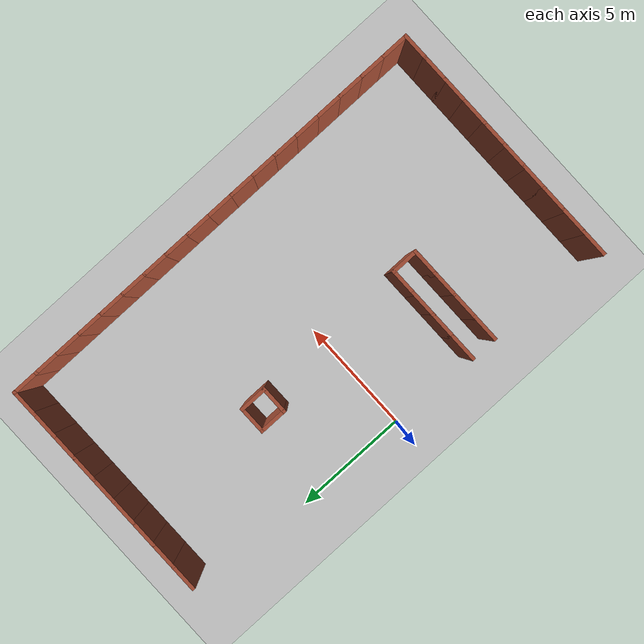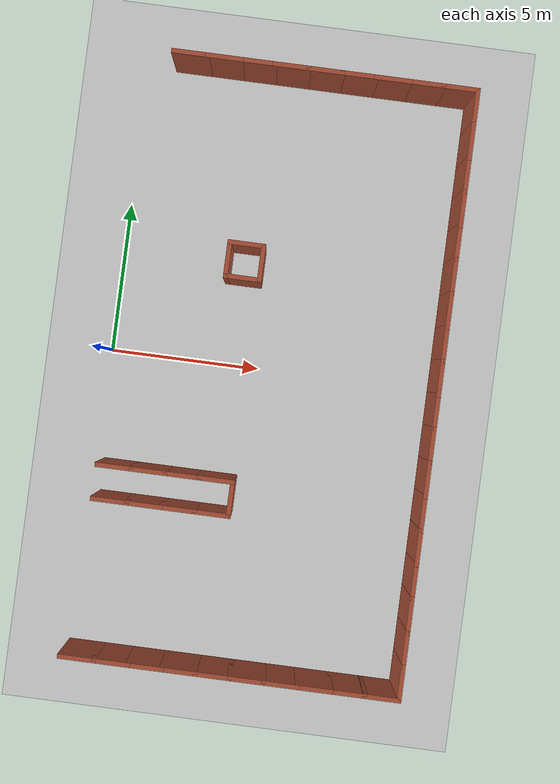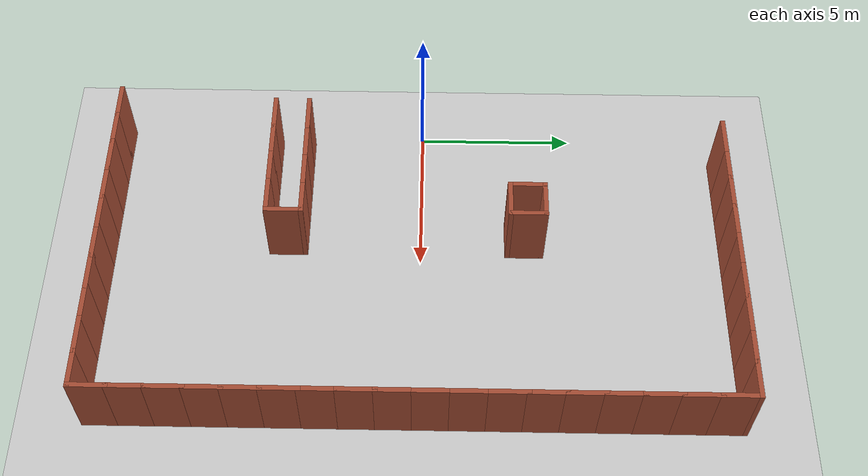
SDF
<sdf version="1.7">
 <world name="default">
  <model name="ground_plane">
   <static>1</static>
   <link name="link">
    <collision name="collision">
     <geometry><plane><normal>0 0 1</normal><size>100 100</size></plane></geometry>
     <surface>
      <contact><collide_bitmask>65535</collide_bitmask></contact>
      <friction><ode><mu>100</mu><mu2>50</mu2></ode></friction>
     </surface>
    </collision>
    <visual name="visual">
     <cast_shadows>0</cast_shadows>
     <geometry><plane><normal>0 0 1</normal><size>100 100</size></plane></geometry>
     <material>
      <script><uri>file://media/materials/scripts/gazebo.material</uri><name>Gazebo/Grey</name></script>
     </material>
    </visual>
   </link>
  </model>
  <model name="mapateste">
   <pose>0.45 -0.1 0 0 -0 0</pose>
   <link name="Wall_100">
    <collision name="Wall_100_Collision">
     <geometry><box><size>1.25 0.15 2.5</size></box></geometry>
     <pose>0 0 1.25 0 -0 0</pose>
    </collision>
    <visual name="Wall_100_Visual">
     <pose>0 0 1.25 0 -0 0</pose>
     <geometry><box><size>1.25 0.15 2.5</size></box></geometry>
     <material>
      <script><uri>file://media/materials/scripts/gazebo.material</uri><name>Gazebo/Bricks</name></script>
      <ambient>1 1 1 1</ambient>
     </material>
     <meta><layer>0</layer></meta>
    </visual>
    <pose>9.9 9.9 0 0 -0 3.14159</pose>
   </link>
   <link name="Wall_101">
    <collision name="Wall_101_Collision">
     <geometry><box><size>1.25 0.15 2.5</size></box></geometry>
     <pose>0 0 1.25 0 -0 0</pose>
    </collision>
    <visual name="Wall_101_Visual">
     <pose>0 0 1.25 0 -0 0</pose>
     <geometry><box><size>1.25 0.15 2.5</size></box></geometry>
     <material>
      <script><uri>file://media/materials/scripts/gazebo.material</uri><name>Gazebo/Bricks</name></script>
      <ambient>1 1 1 1</ambient>
     </material>
     <meta><layer>0</layer></meta>
    </visual>
    <pose>8.8 9.9 0 0 -0 3.14159</pose>
   </link>
   <link name="Wall_102">
    <collision name="Wall_102_Collision">
     <geometry><box><size>1.25 0.15 2.5</size></box></geometry>
     <pose>0 0 1.25 0 -0 0</pose>
    </collision>
    <visual name="Wall_102_Visual">
     <pose>0 0 1.25 0 -0 0</pose>
     <geometry><box><size>1.25 0.15 2.5</size></box></geometry>
     <material>
      <script><uri>file://media/materials/scripts/gazebo.material</uri><name>Gazebo/Bricks</name></script>
      <ambient>1 1 1 1</ambient>
     </material>
     <meta><layer>0</layer></meta>
    </visual>
    <pose>7.7 9.9 0 0 -0 3.14159</pose>
   </link>
   <link name="Wall_103">
    <collision name="Wall_103_Collision">
     <geometry><box><size>1.25 0.15 2.5</size></box></geometry>
     <pose>0 0 1.25 0 -0 0</pose>
    </collision>
    <visual name="Wall_103_Visual">
     <pose>0 0 1.25 0 -0 0</pose>
     <geometry><box><size>1.25 0.15 2.5</size></box></geometry>
     <material>
      <script><uri>file://media/materials/scripts/gazebo.material</uri><name>Gazebo/Bricks</name></script>
      <ambient>1 1 1 1</ambient>
     </material>
     <meta><layer>0</layer></meta>
    </visual>
    <pose>6.6 9.9 0 0 -0 3.14159</pose>
   </link>
   <link name="Wall_104">
    <collision name="Wall_104_Collision">
     <geometry><box><size>1.25 0.15 2.5</size></box></geometry>
     <pose>0 0 1.25 0 -0 0</pose>
    </collision>
    <visual name="Wall_104_Visual">
     <pose>0 0 1.25 0 -0 0</pose>
     <geometry><box><size>1.25 0.15 2.5</size></box></geometry>
     <material>
      <script><uri>file://media/materials/scripts/gazebo.material</uri><name>Gazebo/Bricks</name></script>
      <ambient>1 1 1 1</ambient>
     </material>
     <meta><layer>0</layer></meta>
    </visual>
    <pose>5.5 9.9 0 0 -0 3.14159</pose>
   </link>
   <link name="Wall_105">
    <collision name="Wall_105_Collision">
     <geometry><box><size>1.25 0.15 2.5</size></box></geometry>
     <pose>0 0 1.25 0 -0 0</pose>
    </collision>
    <visual name="Wall_105_Visual">
     <pose>0 0 1.25 0 -0 0</pose>
     <geometry><box><size>1.25 0.15 2.5</size></box></geometry>
     <material>
      <script><uri>file://media/materials/scripts/gazebo.material</uri><name>Gazebo/Bricks</name></script>
      <ambient>1 1 1 1</ambient>
     </material>
     <meta><layer>0</layer></meta>
    </visual>
    <pose>4.4 9.9 0 0 -0 3.14159</pose>
   </link>
   <link name="Wall_106">
    <collision name="Wall_106_Collision">
     <geometry><box><size>1.25 0.15 2.5</size></box></geometry>
     <pose>0 0 1.25 0 -0 0</pose>
    </collision>
    <visual name="Wall_106_Visual">
     <pose>0 0 1.25 0 -0 0</pose>
     <geometry><box><size>1.25 0.15 2.5</size></box></geometry>
     <material>
      <script><uri>file://media/materials/scripts/gazebo.material</uri><name>Gazebo/Bricks</name></script>
      <ambient>1 1 1 1</ambient>
     </material>
     <meta><layer>0</layer></meta>
    </visual>
    <pose>3.3 9.9 0 0 -0 3.14159</pose>
   </link>
   <link name="Wall_107">
    <collision name="Wall_107_Collision">
     <geometry><box><size>1.25 0.15 2.5</size></box></geometry>
     <pose>0 0 1.25 0 -0 0</pose>
    </collision>
    <visual name="Wall_107_Visual">
     <pose>0 0 1.25 0 -0 0</pose>
     <geometry><box><size>1.25 0.15 2.5</size></box></geometry>
     <material>
      <script><uri>file://media/materials/scripts/gazebo.material</uri><name>Gazebo/Bricks</name></script>
      <ambient>1 1 1 1</ambient>
     </material>
     <meta><layer>0</layer></meta>
    </visual>
    <pose>2.2 9.9 0 0 -0 3.14159</pose>
   </link>
   <link name="Wall_109">
    <collision name="Wall_109_Collision">
     <geometry><box><size>1.25 0.15 2.5</size></box></geometry>
     <pose>0 0 1.25 0 -0 0</pose>
    </collision>
    <visual name="Wall_109_Visual">
     <pose>0 0 1.25 0 -0 0</pose>
     <geometry><box><size>1.25 0.15 2.5</size></box></geometry>
     <material>
      <script><uri>file://media/materials/scripts/gazebo.material</uri><name>Gazebo/Bricks</name></script>
      <ambient>1 1 1 1</ambient>
     </material>
     <meta><layer>0</layer></meta>
    </visual>
    <pose>1.1 9.9 0 0 -0 3.14159</pose>
   </link>
   <link name="Wall_159">
    <collision name="Wall_159_Collision">
     <geometry><box><size>1.25 0.15 2.5</size></box></geometry>
     <pose>0 0 1.25 0 -0 0</pose>
    </collision>
    <visual name="Wall_159_Visual">
     <pose>0 0 1.25 0 -0 0</pose>
     <geometry><box><size>1.25 0.15 2.5</size></box></geometry>
     <material>
      <script><uri>file://media/materials/scripts/gazebo.material</uri><name>Gazebo/Bricks</name></script>
      <ambient>1 1 1 1</ambient>
     </material>
     <meta><layer>0</layer></meta>
    </visual>
    <pose>4.24775 3.46923 0 0 -0 -1.5708</pose>
   </link>
   <link name="Wall_178">
    <collision name="Wall_178_Collision">
     <geometry><box><size>1.25 0.15 2.5</size></box></geometry>
     <pose>0 0 1.25 0 -0 0</pose>
    </collision>
    <visual name="Wall_178_Visual">
     <pose>0 0 1.25 0 -0 0</pose>
     <geometry><box><size>1.25 0.15 2.5</size></box></geometry>
     <material>
      <script><uri>file://media/materials/scripts/gazebo.material</uri><name>Gazebo/Bricks</name></script>
      <ambient>1 1 1 1</ambient>
     </material>
     <meta><layer>0</layer></meta>
    </visual>
    <pose>0.390782 -4.74159 0 0 -0 0</pose>
   </link>
   <link name="Wall_179">
    <collision name="Wall_179_Collision">
     <geometry><box><size>1.25 0.15 2.5</size></box></geometry>
     <pose>0 0 1.25 0 -0 0</pose>
    </collision>
    <visual name="Wall_179_Visual">
     <pose>0 0 1.25 0 -0 0</pose>
     <geometry><box><size>1.25 0.15 2.5</size></box></geometry>
     <material>
      <script><uri>file://media/materials/scripts/gazebo.material</uri><name>Gazebo/Bricks</name></script>
      <ambient>1 1 1 1</ambient>
     </material>
     <meta><layer>0</layer></meta>
    </visual>
    <pose>1.49078 -4.74159 0 0 -0 0</pose>
   </link>
   <link name="Wall_180">
    <collision name="Wall_180_Collision">
     <geometry><box><size>1.25 0.15 2.5</size></box></geometry>
     <pose>0 0 1.25 0 -0 0</pose>
    </collision>
    <visual name="Wall_180_Visual">
     <pose>0 0 1.25 0 -0 0</pose>
     <geometry><box><size>1.25 0.15 2.5</size></box></geometry>
     <material>
      <script><uri>file://media/materials/scripts/gazebo.material</uri><name>Gazebo/Bricks</name></script>
      <ambient>1 1 1 1</ambient>
     </material>
     <meta><layer>0</layer></meta>
    </visual>
    <pose>2.59078 -4.74159 0 0 -0 0</pose>
   </link>
   <link name="Wall_181">
    <collision name="Wall_181_Collision">
     <geometry><box><size>1.25 0.15 2.5</size></box></geometry>
     <pose>0 0 1.25 0 -0 0</pose>
    </collision>
    <visual name="Wall_181_Visual">
     <pose>0 0 1.25 0 -0 0</pose>
     <geometry><box><size>1.25 0.15 2.5</size></box></geometry>
     <material>
      <script><uri>file://media/materials/scripts/gazebo.material</uri><name>Gazebo/Bricks</name></script>
      <ambient>1 1 1 1</ambient>
     </material>
     <meta><layer>0</layer></meta>
    </visual>
    <pose>3.69078 -4.74159 0 0 -0 0</pose>
   </link>
   <link name="Wall_182">
    <collision name="Wall_182_Collision">
     <geometry><box><size>1.25 0.15 2.5</size></box></geometry>
     <pose>0 0 1.25 0 -0 0</pose>
    </collision>
    <visual name="Wall_182_Visual">
     <pose>0 0 1.25 0 -0 0</pose>
     <geometry><box><size>1.25 0.15 2.5</size></box></geometry>
     <material>
      <script><uri>file://media/materials/scripts/gazebo.material</uri><name>Gazebo/Bricks</name></script>
      <ambient>1 1 1 1</ambient>
     </material>
     <meta><layer>0</layer></meta>
    </visual>
    <pose>4.24078 -4.19159 0 0 -0 1.5708</pose>
   </link>
   <link name="Wall_184">
    <collision name="Wall_184_Collision">
     <geometry><box><size>1.25 0.15 2.5</size></box></geometry>
     <pose>0 0 1.25 0 -0 0</pose>
    </collision>
    <visual name="Wall_184_Visual">
     <pose>0 0 1.25 0 -0 0</pose>
     <geometry><box><size>1.25 0.15 2.5</size></box></geometry>
     <material>
      <script><uri>file://media/materials/scripts/gazebo.material</uri><name>Gazebo/Bricks</name></script>
      <ambient>1 1 1 1</ambient>
     </material>
     <meta><layer>0</layer></meta>
    </visual>
    <pose>3.69775 2.91923 0 0 -0 3.14159</pose>
   </link>
   <link name="Wall_185">
    <collision name="Wall_185_Collision">
     <geometry><box><size>1.25 0.15 2.5</size></box></geometry>
     <pose>0 0 1.25 0 -0 0</pose>
    </collision>
    <visual name="Wall_185_Visual">
     <pose>0 0 1.25 0 -0 0</pose>
     <geometry><box><size>1.25 0.15 2.5</size></box></geometry>
     <material>
      <script><uri>file://media/materials/scripts/gazebo.material</uri><name>Gazebo/Bricks</name></script>
      <ambient>1 1 1 1</ambient>
     </material>
     <meta><layer>0</layer></meta>
    </visual>
    <pose>3.14775 3.46923 0 0 -0 1.5708</pose>
   </link>
   <link name="Wall_186">
    <collision name="Wall_186_Collision">
     <geometry><box><size>1.25 0.15 2.5</size></box></geometry>
     <pose>0 0 1.25 0 -0 0</pose>
    </collision>
    <visual name="Wall_186_Visual">
     <pose>0 0 1.25 0 -0 0</pose>
     <geometry><box><size>1.25 0.15 2.5</size></box></geometry>
     <material>
      <script><uri>file://media/materials/scripts/gazebo.material</uri><name>Gazebo/Bricks</name></script>
      <ambient>1 1 1 1</ambient>
     </material>
     <meta><layer>0</layer></meta>
    </visual>
    <pose>3.69775 4.01923 0 0 -0 0</pose>
   </link>
   <link name="Wall_192">
    <collision name="Wall_192_Collision">
     <geometry><box><size>1.25 0.15 2.5</size></box></geometry>
     <pose>0 0 1.25 0 -0 0</pose>
    </collision>
    <visual name="Wall_192_Visual">
     <pose>0 0 1.25 0 -0 0</pose>
     <geometry><box><size>1.25 0.15 2.5</size></box></geometry>
     <material>
      <script><uri>file://media/materials/scripts/gazebo.material</uri><name>Gazebo/Bricks</name></script>
      <ambient>1 1 1 1</ambient>
     </material>
     <meta><layer>0</layer></meta>
    </visual>
    <pose>0.390782 -3.64159 0 0 -0 0</pose>
   </link>
   <link name="Wall_193">
    <collision name="Wall_193_Collision">
     <geometry><box><size>1.25 0.15 2.5</size></box></geometry>
     <pose>0 0 1.25 0 -0 0</pose>
    </collision>
    <visual name="Wall_193_Visual">
     <pose>0 0 1.25 0 -0 0</pose>
     <geometry><box><size>1.25 0.15 2.5</size></box></geometry>
     <material>
      <script><uri>file://media/materials/scripts/gazebo.material</uri><name>Gazebo/Bricks</name></script>
      <ambient>1 1 1 1</ambient>
     </material>
     <meta><layer>0</layer></meta>
    </visual>
    <pose>1.49078 -3.64159 0 0 -0 0</pose>
   </link>
   <link name="Wall_194">
    <collision name="Wall_194_Collision">
     <geometry><box><size>1.25 0.15 2.5</size></box></geometry>
     <pose>0 0 1.25 0 -0 0</pose>
    </collision>
    <visual name="Wall_194_Visual">
     <pose>0 0 1.25 0 -0 0</pose>
     <geometry><box><size>1.25 0.15 2.5</size></box></geometry>
     <material>
      <script><uri>file://media/materials/scripts/gazebo.material</uri><name>Gazebo/Bricks</name></script>
      <ambient>1 1 1 1</ambient>
     </material>
     <meta><layer>0</layer></meta>
    </visual>
    <pose>2.59078 -3.64159 0 0 -0 0</pose>
   </link>
   <link name="Wall_195">
    <collision name="Wall_195_Collision">
     <geometry><box><size>1.25 0.15 2.5</size></box></geometry>
     <pose>0 0 1.25 0 -0 0</pose>
    </collision>
    <visual name="Wall_195_Visual">
     <pose>0 0 1.25 0 -0 0</pose>
     <geometry><box><size>1.25 0.15 2.5</size></box></geometry>
     <material>
      <script><uri>file://media/materials/scripts/gazebo.material</uri><name>Gazebo/Bricks</name></script>
      <ambient>1 1 1 1</ambient>
     </material>
     <meta><layer>0</layer></meta>
    </visual>
    <pose>3.69078 -3.64159 0 0 -0 0</pose>
   </link>
   <link name="Wall_72">
    <collision name="Wall_72_Collision">
     <geometry><box><size>1.25 0.15 2.5</size></box></geometry>
     <pose>0 0 1.25 0 -0 0</pose>
    </collision>
    <visual name="Wall_72_Visual">
     <pose>0 0 1.25 0 -0 0</pose>
     <geometry><box><size>1.25 0.15 2.5</size></box></geometry>
     <material>
      <script><uri>file://media/materials/scripts/gazebo.material</uri><name>Gazebo/Bricks</name></script>
      <ambient>1 1 1 1</ambient>
     </material>
     <meta><layer>0</layer></meta>
    </visual>
    <pose>-0 -9.9 0 0 -0 0</pose>
   </link>
   <link name="Wall_73">
    <collision name="Wall_73_Collision">
     <geometry><box><size>1.25 0.15 2.5</size></box></geometry>
     <pose>0 0 1.25 0 -0 0</pose>
    </collision>
    <visual name="Wall_73_Visual">
     <pose>0 0 1.25 0 -0 0</pose>
     <geometry><box><size>1.25 0.15 2.5</size></box></geometry>
     <material>
      <script><uri>file://media/materials/scripts/gazebo.material</uri><name>Gazebo/Bricks</name></script>
      <ambient>1 1 1 1</ambient>
     </material>
     <meta><layer>0</layer></meta>
    </visual>
    <pose>1.1 -9.9 0 0 -0 0</pose>
   </link>
   <link name="Wall_74">
    <collision name="Wall_74_Collision">
     <geometry><box><size>1.25 0.15 2.5</size></box></geometry>
     <pose>0 0 1.25 0 -0 0</pose>
    </collision>
    <visual name="Wall_74_Visual">
     <pose>0 0 1.25 0 -0 0</pose>
     <geometry><box><size>1.25 0.15 2.5</size></box></geometry>
     <material>
      <script><uri>file://media/materials/scripts/gazebo.material</uri><name>Gazebo/Bricks</name></script>
      <ambient>1 1 1 1</ambient>
     </material>
     <meta><layer>0</layer></meta>
    </visual>
    <pose>2.2 -9.9 0 0 -0 0</pose>
   </link>
   <link name="Wall_75">
    <collision name="Wall_75_Collision">
     <geometry><box><size>1.25 0.15 2.5</size></box></geometry>
     <pose>0 0 1.25 0 -0 0</pose>
    </collision>
    <visual name="Wall_75_Visual">
     <pose>0 0 1.25 0 -0 0</pose>
     <geometry><box><size>1.25 0.15 2.5</size></box></geometry>
     <material>
      <script><uri>file://media/materials/scripts/gazebo.material</uri><name>Gazebo/Bricks</name></script>
      <ambient>1 1 1 1</ambient>
     </material>
     <meta><layer>0</layer></meta>
    </visual>
    <pose>3.3 -9.9 0 0 -0 0</pose>
   </link>
   <link name="Wall_76">
    <collision name="Wall_76_Collision">
     <geometry><box><size>1.25 0.15 2.5</size></box></geometry>
     <pose>0 0 1.25 0 -0 0</pose>
    </collision>
    <visual name="Wall_76_Visual">
     <pose>0 0 1.25 0 -0 0</pose>
     <geometry><box><size>1.25 0.15 2.5</size></box></geometry>
     <material>
      <script><uri>file://media/materials/scripts/gazebo.material</uri><name>Gazebo/Bricks</name></script>
      <ambient>1 1 1 1</ambient>
     </material>
     <meta><layer>0</layer></meta>
    </visual>
    <pose>4.4 -9.9 0 0 -0 0</pose>
   </link>
   <link name="Wall_77">
    <collision name="Wall_77_Collision">
     <geometry><box><size>1.25 0.15 2.5</size></box></geometry>
     <pose>0 0 1.25 0 -0 0</pose>
    </collision>
    <visual name="Wall_77_Visual">
     <pose>0 0 1.25 0 -0 0</pose>
     <geometry><box><size>1.25 0.15 2.5</size></box></geometry>
     <material>
      <script><uri>file://media/materials/scripts/gazebo.material</uri><name>Gazebo/Bricks</name></script>
      <ambient>1 1 1 1</ambient>
     </material>
     <meta><layer>0</layer></meta>
    </visual>
    <pose>5.5 -9.9 0 0 -0 0</pose>
   </link>
   <link name="Wall_78">
    <collision name="Wall_78_Collision">
     <geometry><box><size>1.25 0.15 2.5</size></box></geometry>
     <pose>0 0 1.25 0 -0 0</pose>
    </collision>
    <visual name="Wall_78_Visual">
     <pose>0 0 1.25 0 -0 0</pose>
     <geometry><box><size>1.25 0.15 2.5</size></box></geometry>
     <material>
      <script><uri>file://media/materials/scripts/gazebo.material</uri><name>Gazebo/Bricks</name></script>
      <ambient>1 1 1 1</ambient>
     </material>
     <meta><layer>0</layer></meta>
    </visual>
    <pose>6.6 -9.9 0 0 -0 0</pose>
   </link>
   <link name="Wall_79">
    <collision name="Wall_79_Collision">
     <geometry><box><size>1.25 0.15 2.5</size></box></geometry>
     <pose>0 0 1.25 0 -0 0</pose>
    </collision>
    <visual name="Wall_79_Visual">
     <pose>0 0 1.25 0 -0 0</pose>
     <geometry><box><size>1.25 0.15 2.5</size></box></geometry>
     <material>
      <script><uri>file://media/materials/scripts/gazebo.material</uri><name>Gazebo/Bricks</name></script>
      <ambient>1 1 1 1</ambient>
     </material>
     <meta><layer>0</layer></meta>
    </visual>
    <pose>7.7 -9.9 0 0 -0 0</pose>
   </link>
   <link name="Wall_80">
    <collision name="Wall_80_Collision">
     <geometry><box><size>1.25 0.15 2.5</size></box></geometry>
     <pose>0 0 1.25 0 -0 0</pose>
    </collision>
    <visual name="Wall_80_Visual">
     <pose>0 0 1.25 0 -0 0</pose>
     <geometry><box><size>1.25 0.15 2.5</size></box></geometry>
     <material>
      <script><uri>file://media/materials/scripts/gazebo.material</uri><name>Gazebo/Bricks</name></script>
      <ambient>1 1 1 1</ambient>
     </material>
     <meta><layer>0</layer></meta>
    </visual>
    <pose>8.8 -9.9 0 0 -0 0</pose>
   </link>
   <link name="Wall_81">
    <collision name="Wall_81_Collision">
     <geometry><box><size>1.25 0.15 2.5</size></box></geometry>
     <pose>0 0 1.25 0 -0 0</pose>
    </collision>
    <visual name="Wall_81_Visual">
     <pose>0 0 1.25 0 -0 0</pose>
     <geometry><box><size>1.25 0.15 2.5</size></box></geometry>
     <material>
      <script><uri>file://media/materials/scripts/gazebo.material</uri><name>Gazebo/Bricks</name></script>
      <ambient>1 1 1 1</ambient>
     </material>
     <meta><layer>0</layer></meta>
    </visual>
    <pose>9.9 -9.9 0 0 -0 0</pose>
   </link>
   <link name="Wall_82">
    <collision name="Wall_82_Collision">
     <geometry><box><size>1.25 0.15 2.5</size></box></geometry>
     <pose>0 0 1.25 0 -0 0</pose>
    </collision>
    <visual name="Wall_82_Visual">
     <pose>0 0 1.25 0 -0 0</pose>
     <geometry><box><size>1.25 0.15 2.5</size></box></geometry>
     <material>
      <script><uri>file://media/materials/scripts/gazebo.material</uri><name>Gazebo/Bricks</name></script>
      <ambient>1 1 1 1</ambient>
     </material>
     <meta><layer>0</layer></meta>
    </visual>
    <pose>10.45 -9.35 0 0 -0 1.5708</pose>
   </link>
   <link name="Wall_83">
    <collision name="Wall_83_Collision">
     <geometry><box><size>1.25 0.15 2.5</size></box></geometry>
     <pose>0 0 1.25 0 -0 0</pose>
    </collision>
    <visual name="Wall_83_Visual">
     <pose>0 0 1.25 0 -0 0</pose>
     <geometry><box><size>1.25 0.15 2.5</size></box></geometry>
     <material>
      <script><uri>file://media/materials/scripts/gazebo.material</uri><name>Gazebo/Bricks</name></script>
      <ambient>1 1 1 1</ambient>
     </material>
     <meta><layer>0</layer></meta>
    </visual>
    <pose>10.45 -8.25 0 0 -0 1.5708</pose>
   </link>
   <link name="Wall_84">
    <collision name="Wall_84_Collision">
     <geometry><box><size>1.25 0.15 2.5</size></box></geometry>
     <pose>0 0 1.25 0 -0 0</pose>
    </collision>
    <visual name="Wall_84_Visual">
     <pose>0 0 1.25 0 -0 0</pose>
     <geometry><box><size>1.25 0.15 2.5</size></box></geometry>
     <material>
      <script><uri>file://media/materials/scripts/gazebo.material</uri><name>Gazebo/Bricks</name></script>
      <ambient>1 1 1 1</ambient>
     </material>
     <meta><layer>0</layer></meta>
    </visual>
    <pose>10.45 -7.15 0 0 -0 1.5708</pose>
   </link>
   <link name="Wall_85">
    <collision name="Wall_85_Collision">
     <geometry><box><size>1.25 0.15 2.5</size></box></geometry>
     <pose>0 0 1.25 0 -0 0</pose>
    </collision>
    <visual name="Wall_85_Visual">
     <pose>0 0 1.25 0 -0 0</pose>
     <geometry><box><size>1.25 0.15 2.5</size></box></geometry>
     <material>
      <script><uri>file://media/materials/scripts/gazebo.material</uri><name>Gazebo/Bricks</name></script>
      <ambient>1 1 1 1</ambient>
     </material>
     <meta><layer>0</layer></meta>
    </visual>
    <pose>10.45 -6.05 0 0 -0 1.5708</pose>
   </link>
   <link name="Wall_86">
    <collision name="Wall_86_Collision">
     <geometry><box><size>1.25 0.15 2.5</size></box></geometry>
     <pose>0 0 1.25 0 -0 0</pose>
    </collision>
    <visual name="Wall_86_Visual">
     <pose>0 0 1.25 0 -0 0</pose>
     <geometry><box><size>1.25 0.15 2.5</size></box></geometry>
     <material>
      <script><uri>file://media/materials/scripts/gazebo.material</uri><name>Gazebo/Bricks</name></script>
      <ambient>1 1 1 1</ambient>
     </material>
     <meta><layer>0</layer></meta>
    </visual>
    <pose>10.45 -4.95 0 0 -0 1.5708</pose>
   </link>
   <link name="Wall_87">
    <collision name="Wall_87_Collision">
     <geometry><box><size>1.25 0.15 2.5</size></box></geometry>
     <pose>0 0 1.25 0 -0 0</pose>
    </collision>
    <visual name="Wall_87_Visual">
     <pose>0 0 1.25 0 -0 0</pose>
     <geometry><box><size>1.25 0.15 2.5</size></box></geometry>
     <material>
      <script><uri>file://media/materials/scripts/gazebo.material</uri><name>Gazebo/Bricks</name></script>
      <ambient>1 1 1 1</ambient>
     </material>
     <meta><layer>0</layer></meta>
    </visual>
    <pose>10.45 -3.85 0 0 -0 1.5708</pose>
   </link>
   <link name="Wall_88">
    <collision name="Wall_88_Collision">
     <geometry><box><size>1.25 0.15 2.5</size></box></geometry>
     <pose>0 0 1.25 0 -0 0</pose>
    </collision>
    <visual name="Wall_88_Visual">
     <pose>0 0 1.25 0 -0 0</pose>
     <geometry><box><size>1.25 0.15 2.5</size></box></geometry>
     <material>
      <script><uri>file://media/materials/scripts/gazebo.material</uri><name>Gazebo/Bricks</name></script>
      <ambient>1 1 1 1</ambient>
     </material>
     <meta><layer>0</layer></meta>
    </visual>
    <pose>10.45 -2.75 0 0 -0 1.5708</pose>
   </link>
   <link name="Wall_89">
    <collision name="Wall_89_Collision">
     <geometry><box><size>1.25 0.15 2.5</size></box></geometry>
     <pose>0 0 1.25 0 -0 0</pose>
    </collision>
    <visual name="Wall_89_Visual">
     <pose>0 0 1.25 0 -0 0</pose>
     <geometry><box><size>1.25 0.15 2.5</size></box></geometry>
     <material>
      <script><uri>file://media/materials/scripts/gazebo.material</uri><name>Gazebo/Bricks</name></script>
      <ambient>1 1 1 1</ambient>
     </material>
     <meta><layer>0</layer></meta>
    </visual>
    <pose>10.45 -1.65 0 0 -0 1.5708</pose>
   </link>
   <link name="Wall_90">
    <collision name="Wall_90_Collision">
     <geometry><box><size>1.25 0.15 2.5</size></box></geometry>
     <pose>0 0 1.25 0 -0 0</pose>
    </collision>
    <visual name="Wall_90_Visual">
     <pose>0 0 1.25 0 -0 0</pose>
     <geometry><box><size>1.25 0.15 2.5</size></box></geometry>
     <material>
      <script><uri>file://media/materials/scripts/gazebo.material</uri><name>Gazebo/Bricks</name></script>
      <ambient>1 1 1 1</ambient>
     </material>
     <meta><layer>0</layer></meta>
    </visual>
    <pose>10.45 -0.55 0 0 -0 1.5708</pose>
   </link>
   <link name="Wall_91">
    <collision name="Wall_91_Collision">
     <geometry><box><size>1.25 0.15 2.5</size></box></geometry>
     <pose>0 0 1.25 0 -0 0</pose>
    </collision>
    <visual name="Wall_91_Visual">
     <pose>0 0 1.25 0 -0 0</pose>
     <geometry><box><size>1.25 0.15 2.5</size></box></geometry>
     <material>
      <script><uri>file://media/materials/scripts/gazebo.material</uri><name>Gazebo/Bricks</name></script>
      <ambient>1 1 1 1</ambient>
     </material>
     <meta><layer>0</layer></meta>
    </visual>
    <pose>10.45 0.55 0 0 -0 1.5708</pose>
   </link>
   <link name="Wall_92">
    <collision name="Wall_92_Collision">
     <geometry><box><size>1.25 0.15 2.5</size></box></geometry>
     <pose>0 0 1.25 0 -0 0</pose>
    </collision>
    <visual name="Wall_92_Visual">
     <pose>0 0 1.25 0 -0 0</pose>
     <geometry><box><size>1.25 0.15 2.5</size></box></geometry>
     <material>
      <script><uri>file://media/materials/scripts/gazebo.material</uri><name>Gazebo/Bricks</name></script>
      <ambient>1 1 1 1</ambient>
     </material>
     <meta><layer>0</layer></meta>
    </visual>
    <pose>10.45 1.65 0 0 -0 1.5708</pose>
   </link>
   <link name="Wall_93">
    <collision name="Wall_93_Collision">
     <geometry><box><size>1.25 0.15 2.5</size></box></geometry>
     <pose>0 0 1.25 0 -0 0</pose>
    </collision>
    <visual name="Wall_93_Visual">
     <pose>0 0 1.25 0 -0 0</pose>
     <geometry><box><size>1.25 0.15 2.5</size></box></geometry>
     <material>
      <script><uri>file://media/materials/scripts/gazebo.material</uri><name>Gazebo/Bricks</name></script>
      <ambient>1 1 1 1</ambient>
     </material>
     <meta><layer>0</layer></meta>
    </visual>
    <pose>10.45 2.75 0 0 -0 1.5708</pose>
   </link>
   <link name="Wall_94">
    <collision name="Wall_94_Collision">
     <geometry><box><size>1.25 0.15 2.5</size></box></geometry>
     <pose>0 0 1.25 0 -0 0</pose>
    </collision>
    <visual name="Wall_94_Visual">
     <pose>0 0 1.25 0 -0 0</pose>
     <geometry><box><size>1.25 0.15 2.5</size></box></geometry>
     <material>
      <script><uri>file://media/materials/scripts/gazebo.material</uri><name>Gazebo/Bricks</name></script>
      <ambient>1 1 1 1</ambient>
     </material>
     <meta><layer>0</layer></meta>
    </visual>
    <pose>10.45 3.85 0 0 -0 1.5708</pose>
   </link>
   <link name="Wall_95">
    <collision name="Wall_95_Collision">
     <geometry><box><size>1.25 0.15 2.5</size></box></geometry>
     <pose>0 0 1.25 0 -0 0</pose>
    </collision>
    <visual name="Wall_95_Visual">
     <pose>0 0 1.25 0 -0 0</pose>
     <geometry><box><size>1.25 0.15 2.5</size></box></geometry>
     <material>
      <script><uri>file://media/materials/scripts/gazebo.material</uri><name>Gazebo/Bricks</name></script>
      <ambient>1 1 1 1</ambient>
     </material>
     <meta><layer>0</layer></meta>
    </visual>
    <pose>10.45 4.95 0 0 -0 1.5708</pose>
   </link>
   <link name="Wall_96">
    <collision name="Wall_96_Collision">
     <geometry><box><size>1.25 0.15 2.5</size></box></geometry>
     <pose>0 0 1.25 0 -0 0</pose>
    </collision>
    <visual name="Wall_96_Visual">
     <pose>0 0 1.25 0 -0 0</pose>
     <geometry><box><size>1.25 0.15 2.5</size></box></geometry>
     <material>
      <script><uri>file://media/materials/scripts/gazebo.material</uri><name>Gazebo/Bricks</name></script>
      <ambient>1 1 1 1</ambient>
     </material>
     <meta><layer>0</layer></meta>
    </visual>
    <pose>10.45 6.05 0 0 -0 1.5708</pose>
   </link>
   <link name="Wall_97">
    <collision name="Wall_97_Collision">
     <geometry><box><size>1.25 0.15 2.5</size></box></geometry>
     <pose>0 0 1.25 0 -0 0</pose>
    </collision>
    <visual name="Wall_97_Visual">
     <pose>0 0 1.25 0 -0 0</pose>
     <geometry><box><size>1.25 0.15 2.5</size></box></geometry>
     <material>
      <script><uri>file://media/materials/scripts/gazebo.material</uri><name>Gazebo/Bricks</name></script>
      <ambient>1 1 1 1</ambient>
     </material>
     <meta><layer>0</layer></meta>
    </visual>
    <pose>10.45 7.15 0 0 -0 1.5708</pose>
   </link>
   <link name="Wall_98">
    <collision name="Wall_98_Collision">
     <geometry><box><size>1.25 0.15 2.5</size></box></geometry>
     <pose>0 0 1.25 0 -0 0</pose>
    </collision>
    <visual name="Wall_98_Visual">
     <pose>0 0 1.25 0 -0 0</pose>
     <geometry><box><size>1.25 0.15 2.5</size></box></geometry>
     <material>
      <script><uri>file://media/materials/scripts/gazebo.material</uri><name>Gazebo/Bricks</name></script>
      <ambient>1 1 1 1</ambient>
     </material>
     <meta><layer>0</layer></meta>
    </visual>
    <pose>10.45 8.25 0 0 -0 1.5708</pose>
   </link>
   <link name="Wall_99">
    <collision name="Wall_99_Collision">
     <geometry><box><size>1.25 0.15 2.5</size></box></geometry>
     <pose>0 0 1.25 0 -0 0</pose>
    </collision>
    <visual name="Wall_99_Visual">
     <pose>0 0 1.25 0 -0 0</pose>
     <geometry><box><size>1.25 0.15 2.5</size></box></geometry>
     <material>
      <script><uri>file://media/materials/scripts/gazebo.material</uri><name>Gazebo/Bricks</name></script>
      <ambient>1 1 1 1</ambient>
     </material>
     <meta><layer>0</layer></meta>
    </visual>
    <pose>10.45 9.35 0 0 -0 1.5708</pose>
   </link>
   <static>1</static>
  </model>
 </world>
</sdf>
